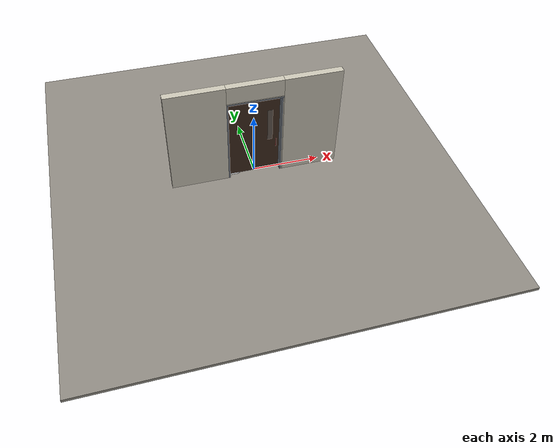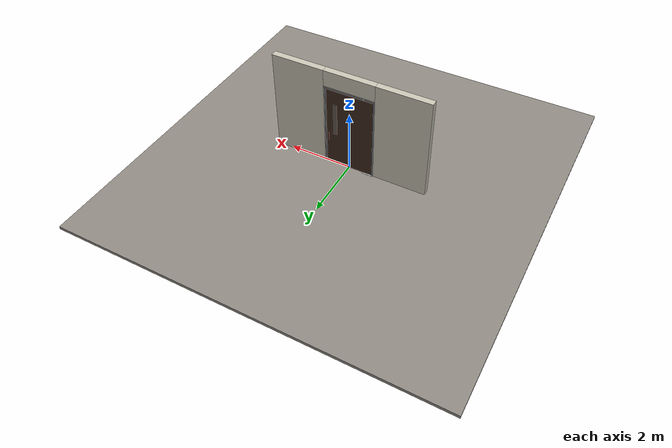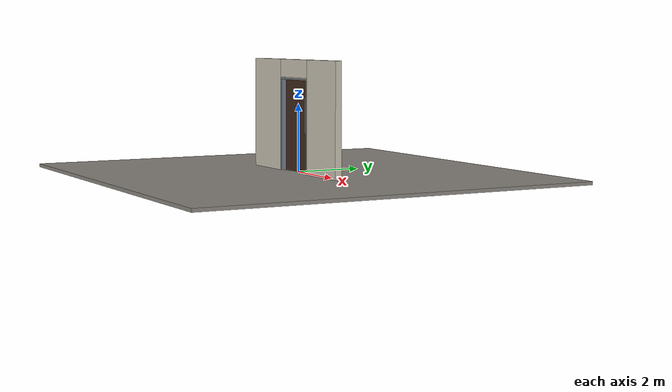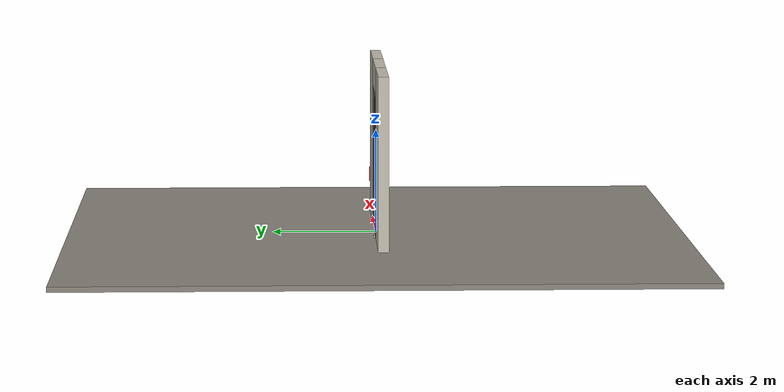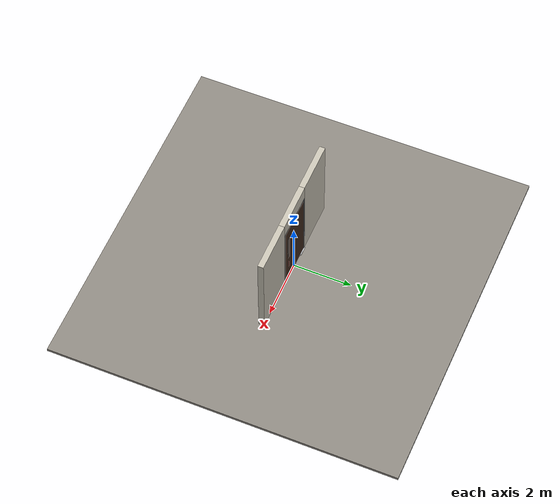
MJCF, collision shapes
<?xml version="1.0" ?>
<mujoco model="db0088_pivot_simple">
  <compiler angle="radian" meshdir="../../hardware" texturedir="../../textures" autolimits="true" inertiafromgeom="false"/>
  <option timestep="0.002" integrator="implicitfast" cone="elliptic" impratio="10" noslip_iterations="3">
    <flag multiccd="enable"/>
  </option>
  <size memory="16M"/>
  <default>
    <geom condim="4" solref="0.005 1" solimp="0.95 0.99 0.001"/>
    <joint solreflimit="0.005 1" solimplimit="0.95 0.99 0.001"/>
    <tendon solreflimit="0.005 1"/>
    <equality solref="0.002 1"/>
  </default>
  <visual>
    <headlight ambient="0.4 0.4 0.4" diffuse="0.7 0.7 0.7" specular="0.2 0.2 0.2"/>
    <quality shadowsize="4096"/>
    <map znear="0.01" zfar="60"/>
  </visual>
  <asset>
    <mesh name="pull_f8d79d6331" file="pull_f8d79d6331.obj"/>
    <material name="mat_floor" rgba="0.55 0.53 0.5 1" specular="0.2" shininess="0.15" reflectance="0"/>
    <material name="mat_wall" rgba="0.78 0.76 0.7 1" specular="0.2" shininess="0.1" reflectance="0"/>
    <material name="mat_leaf" rgba="0.239 0.158 0.108 1" specular="0.2" shininess="0.55" reflectance="0"/>
    <material name="mat_glass" rgba="0.85 0.92 0.95 0.25" specular="0.2" shininess="0.95" reflectance="0.1"/>
    <material name="mat_hinge" rgba="0.65 0.66 0.68 1" specular="0.74" shininess="0.5" reflectance="0.36"/>
    <material name="mat_op_stainless" rgba="0.75 0.76 0.77 1" specular="0.8" shininess="0.65" reflectance="0.4"/>
    <material name="mat_frame" rgba="0.45 0.48 0.52 1" specular="0.32" shininess="0.6" reflectance="0.08"/>
    <material name="mat_closer" rgba="0.75 0.76 0.77 1" specular="0.8" shininess="0.65" reflectance="0.4"/>
    <texture name="skybox" type="skybox" builtin="gradient" rgb1="0.6 0.7 0.85" rgb2="0.9 0.92 0.95" width="256" height="256"/>
  </asset>
  <worldbody>
    <light name="sun" pos="1.5 -2.5 4" dir="-0.3 0.5 -0.8" directional="true" diffuse="0.8 0.8 0.8" specular="0.3 0.3 0.3" castshadow="true"/>
    <light name="fill" pos="-1.5 2.5 3" dir="0.3 -0.5 -0.7" directional="true" diffuse="0.35 0.35 0.4" castshadow="false"/>
    <camera name="robot_view" pos="0 -3.238 2.2429" xyaxes="1 0 0 0 0.26963 0.962964" fovy="52"/>
    <camera name="far_view" pos="0 3.097 2.2429" xyaxes="-1 0 0 0 -0.26963 0.962964" fovy="52"/>
    <camera name="iso" pos="2.4073 -2.7312 2.7497" xyaxes="0.741536 0.670913 0 -0.242917 0.268487 0.932151" fovy="46"/>
    <camera name="detail_handle" pos="0.825 -0.8975 1.33" xyaxes="0.97561 0.219512 0 -0.070934 0.315262 0.94635" fovy="38"/>
    <geom name="floor" type="box" size="6 6 0.05" pos="0 0 -0.05" material="mat_floor" group="0" contype="1" conaffinity="1" friction="0.8 0.005 0.0001" density="2400"/>
    <geom name="wall_left" type="box" size="0.8495 0.1 1.656" pos="-1.6505 -0.0705 1.656" material="mat_wall" group="0" contype="1" conaffinity="1" friction="0.6 0.005 0.0001" density="800"/>
    <geom name="wall_right" type="box" size="0.8345 0.1 1.656" pos="1.6655 -0.0705 1.656" material="mat_wall" group="0" contype="1" conaffinity="1" friction="0.6 0.005 0.0001" density="800"/>
    <geom name="wall_header" type="box" size="0.816 0.1 0.2625" pos="0.015 -0.0705 3.0495" material="mat_wall" group="0" contype="1" conaffinity="1" friction="0.6 0.005 0.0001" density="800"/>
    <geom name="pivot_bottom_socket" type="box" size="0.035 0.035 0.008" pos="-0.456 0 -0.002" material="mat_hinge" group="1" contype="0" conaffinity="0" density="7850"/>
    <geom name="pivot_top_bracket" type="box" size="0.035 0.035 0.0355" pos="-0.456 0 2.7515" material="mat_hinge" group="1" contype="0" conaffinity="0" density="7850"/>
    <geom name="jamb_hinge" type="box" size="0.0225 0.1 1.356" pos="-0.7785 -0.0705 1.356" material="mat_frame" group="0" contype="1" conaffinity="1" friction="0.6 0.005 0.0001" density="300"/>
    <geom name="jamb_strike" type="box" size="0.0225 0.1 1.356" pos="0.7785 -0.0705 1.356" material="mat_frame" group="0" contype="1" conaffinity="1" friction="0.6 0.005 0.0001" density="300"/>
    <geom name="stud_strike" type="box" size="0.015 0.1 1.356" pos="0.816 -0.0705 1.356" material="mat_wall" group="0" contype="1" conaffinity="1" friction="0.6 0.005 0.0001" density="500"/>
    <geom name="jamb_head" type="box" size="0.816 0.1 0.0225" pos="0.015 -0.0705 2.7345" material="mat_frame" group="0" contype="1" conaffinity="1" friction="0.6 0.005 0.0001" density="300"/>
    <geom name="head_stud" type="box" size="0.816 0.1 0.015" pos="0.015 -0.0705 2.772" material="mat_wall" group="0" contype="1" conaffinity="1" friction="0.6 0.005 0.0001" density="500"/>
    <geom name="floor_spring_cover" type="box" size="0.17 0.06 0.002" pos="-0.636 0 0.002" material="mat_closer" group="1" contype="0" conaffinity="0" density="7900"/>
    <site name="approach_point" pos="0 -1.5 0" quat="1 0 0 0" size="0.05" rgba="0.2 0.9 0.2 0.5" group="4"/>
    <site name="goal_point" pos="0 1.5 0" quat="1 0 0 0" size="0.05" rgba="0.2 0.9 0.2 0.5" group="4"/>
    <site name="door_plane_center" pos="0 0 1.356" quat="1 0 0 0" size="0.02" rgba="0.2 0.9 0.2 0.5" group="4"/>
    <body name="leaf" pos="-0.756 0 0">
      <inertial pos="0.769918 0 1.351392" mass="113.1656" quat="0.502574 -0.502574 0.497413 0.497413" diaginertia="21.787576695 67.5540714 89.264356872"/>
      <joint name="leaf_hinge" type="hinge" axis="0 0 1" pos="0.3 0 0" limited="true" range="0 2.443461" damping="10.468576" frictionloss="1.553686" stiffness="47.663722" springref="-2.263357" armature="0.02"/>
      <geom name="leaf_slab" type="box" size="0.75 0.0225 1.35" pos="0.756 0 1.358" material="mat_leaf" group="0" contype="1" conaffinity="1" friction="0.35 0.005 0.0001" density="1"/>
      <geom name="leaf_glass_0" type="box" size="0.075 0.0233 0.54" pos="1.236 0 1.682" material="mat_glass" group="1" contype="0" conaffinity="0" density="1"/>
      <geom name="leaf_pull_n" type="mesh" mesh="pull_f8d79d6331" pos="1.401 -0.0225 1.05" quat="0.707107 0.707107 0 0" material="mat_op_stainless" group="1" contype="0" conaffinity="0" density="3000"/>
      <geom name="leaf_pull_col_n" type="capsule" size="0.0125 0.13" pos="1.401 -0.0975 1.05" material="mat_op_stainless" group="3" contype="1" conaffinity="1" rgba="0.8 0.3 0.3 0.25" friction="0.7 0.01 0.0001" density="3000"/>
      <geom name="leaf_pull_p" type="mesh" mesh="pull_f8d79d6331" pos="1.401 0.0225 1.05" quat="-0.707107 0.707107 0 0" material="mat_op_stainless" group="1" contype="0" conaffinity="0" density="3000"/>
      <geom name="leaf_pull_col_p" type="capsule" size="0.0125 0.13" pos="1.401 0.0975 1.05" material="mat_op_stainless" group="3" contype="1" conaffinity="1" rgba="0.8 0.3 0.3 0.25" friction="0.7 0.01 0.0001" density="3000"/>
      <site name="leaf_pull_grip_n" pos="1.401 -0.0975 1.05" quat="1 0 0 0" size="0.012" rgba="0.2 0.9 0.2 0.5" group="4"/>
      <site name="leaf_pull_grip_p" pos="1.401 0.0975 1.05" quat="1 0 0 0" size="0.012" rgba="0.2 0.9 0.2 0.5" group="4"/>
      <site name="leaf_edge_mid" pos="1.506 0 1.35" quat="1 0 0 0" size="0.02" rgba="0.2 0.9 0.2 0.5" group="4"/>
    </body>
  </worldbody>
  <sensor>
    <jointpos name="leaf_hinge_pos" joint="leaf_hinge"/>
    <jointvel name="leaf_hinge_vel" joint="leaf_hinge"/>
  </sensor>
</mujoco>
